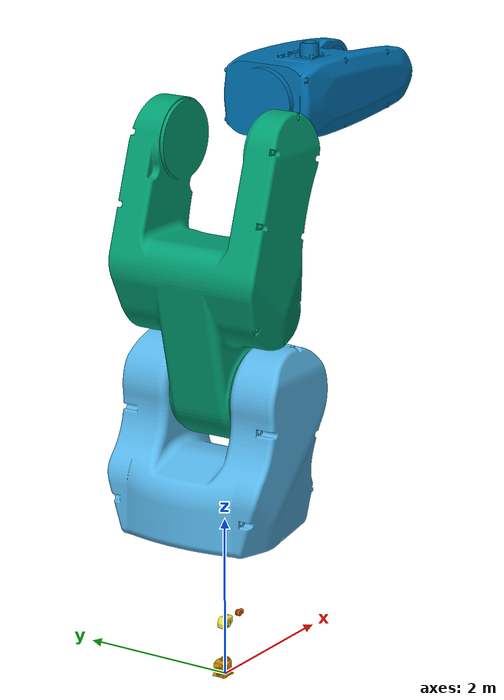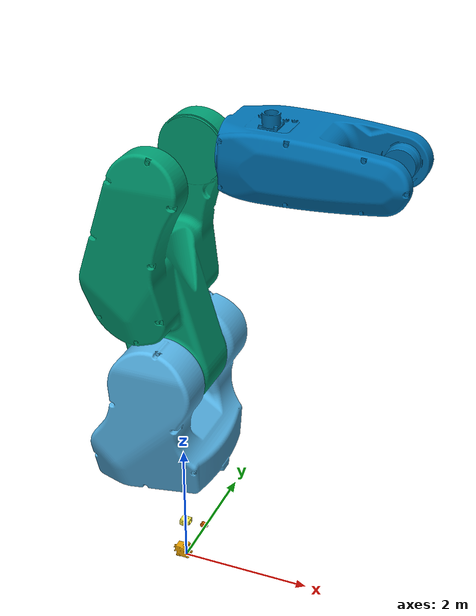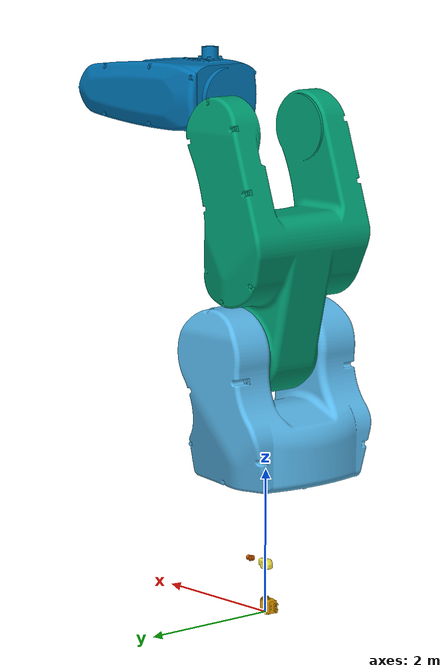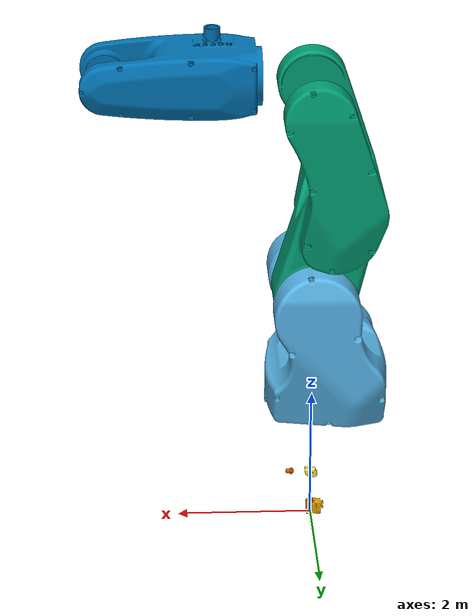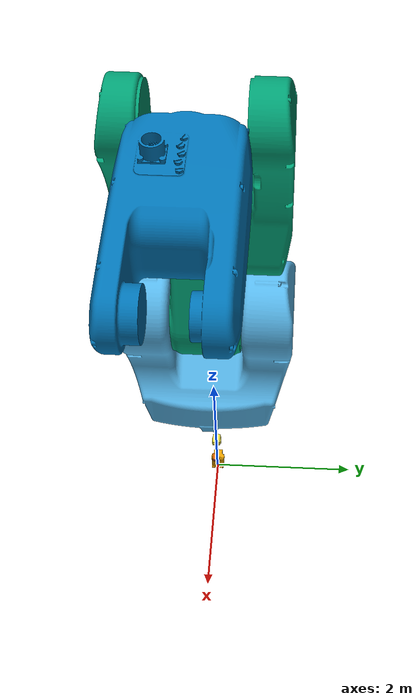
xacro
<?xml version="1.0" ?>
<robot name="er3600" xmlns:xacro="http://www.ros.org/wiki/xacro">
<link name="er3600_base_link">
  <inertial>
    <origin xyz="-0.04588103472079715 -0.00096093718071204 0.09732935529090858" rpy="0 0 0"/>
    <mass value="49.168703789271"/>
    <inertia ixx="0.249181" iyy="0.31934" izz="0.276201" ixy="-0.002035" iyz="1.4e-05" ixz="-0.01146"/>
  </inertial>
  <visual>
    <origin xyz="0 0 0" rpy="0 0 0"/>
    <geometry>
      <mesh filename="file://$(find er3600_description)/meshes/obj/base_link.obj" scale="0.01 0.01 0.01"/>
    </geometry>
  </visual>
  <collision>
    <origin xyz="0 0 0" rpy="0 0 0"/>
    <geometry>
      <mesh filename="file://$(find er3600_description)/meshes/stl/base_link.stl" scale="0.001 0.001 0.001"/>
    </geometry>
  </collision>
</link>

<link name="link1_1">
  <inertial>
    <origin xyz="-0.013928781393613353 -0.00035077205737144284 0.09857927042496772" rpy="0 0 0"/>
    <mass value="19.336200620341412"/>
    <inertia ixx="0.210765" iyy="0.127049" izz="0.154202" ixy="-0.000308" iyz="-3.8e-05" ixz="-0.010369"/>
  </inertial>
  <visual>
    <origin xyz="0.00074 0.000669 -0.195218" rpy="0 0 0"/>
    <geometry>
      <mesh filename="file://$(find er3600_description)/meshes/obj/link1_1.obj" scale="0.01 0.01 0.01"/>
    </geometry>
  </visual>
  <collision>
    <origin xyz="0.00074 0.000669 -0.195218" rpy="0 0 0"/>
    <geometry>
      <mesh filename="file://$(find er3600_description)/meshes/stl/link1_1.stl" scale="0.001 0.001 0.001"/>
    </geometry>
  </collision>
</link>

<link name="link2_1">
  <inertial>
    <origin xyz="-0.021883207590868526 0.04822388948781154 0.13410308670762766" rpy="0 0 0"/>
    <mass value="39.61118840801178"/>
    <inertia ixx="0.507653" iyy="0.417458" izz="0.182812" ixy="-0.000233" iyz="-0.000114" ixz="0.010791"/>
  </inertial>
  <visual>
    <origin xyz="0.00074 0.048669 -0.368218" rpy="0 0 0"/>
    <geometry>
      <mesh filename="file://$(find er3600_description)/meshes/obj/link2_1.obj" scale="0.01 0.01 0.01"/>
    </geometry>
  </visual>
  <collision>
    <origin xyz="0.00074 0.048669 -0.368218" rpy="0 0 0"/>
    <geometry>
      <mesh filename="file://$(find er3600_description)/meshes/stl/link2_1.stl" scale="0.001 0.001 0.001"/>
    </geometry>
  </collision>
</link>

<link name="link3_1">
  <inertial>
    <origin xyz="-0.013523278276526702 0.05775044302012478 0.014436901942284752" rpy="0 0 0"/>
    <mass value="16.622402242515548"/>
    <inertia ixx="0.039851" iyy="0.051163" izz="0.04812" ixy="-0.000364" iyz="0.00028" ixz="-0.004005"/>
  </inertial>
  <visual>
    <origin xyz="0.00074 0.056669 -0.663218" rpy="0 0 0"/>
    <geometry>
      <mesh filename="file://$(find er3600_description)/meshes/obj/link3_1.obj" scale="0.01 0.01 0.01"/>
    </geometry>
  </visual>
  <collision>
    <origin xyz="0.00074 0.056669 -0.663218" rpy="0 0 0"/>
    <geometry>
      <mesh filename="file://$(find er3600_description)/meshes/stl/link3_1.stl" scale="0.001 0.001 0.001"/>
    </geometry>
  </collision>
</link>

<link name="link4_1">
  <inertial>
    <origin xyz="0.11578239396708156 -0.0018433641701102498 0.0009432162781688458" rpy="0 0 0"/>
    <mass value="7.832926502664415"/>
    <inertia ixx="0.020785" iyy="0.047804" izz="0.058016" ixy="-0.00107" iyz="9.3e-05" ixz="0.000345"/>
  </inertial>
  <visual>
    <origin xyz="-0.07626 0.000169 -0.700218" rpy="0 0 0"/>
    <geometry>
      <mesh filename="file://$(find er3600_description)/meshes/obj/link4_1.obj" scale="0.01 0.01 0.01"/>
    </geometry>
  </visual>
  <collision>
    <origin xyz="-0.07626 0.000169 -0.700218" rpy="0 0 0"/>
    <geometry>
      <mesh filename="file://$(find er3600_description)/meshes/stl/link4_1.stl" scale="0.001 0.001 0.001"/>
    </geometry>
  </collision>
</link>

<link name="link5_1">
  <inertial>
    <origin xyz="0.023055761757816262 -0.02354084651228332 -5.31846369621336e-05" rpy="0 0 0"/>
    <mass value="2.864964360899122"/>
    <inertia ixx="0.001836" iyy="0.003374" izz="0.003172" ixy="-0.000197" iyz="0.0" ixz="2e-06"/>
  </inertial>
  <visual>
    <origin xyz="-0.29476 -0.020831 -0.700218" rpy="0 0 0"/>
    <geometry>
      <mesh filename="file://$(find er3600_description)/meshes/obj/link5_1.obj" scale="0.01 0.01 0.01"/>
    </geometry>
  </visual>
  <collision>
    <origin xyz="-0.29476 -0.020831 -0.700218" rpy="0 0 0"/>
    <geometry>
      <mesh filename="file://$(find er3600_description)/meshes/stl/link5_1.stl" scale="0.001 0.001 0.001"/>
    </geometry>
  </collision>
</link>

<link name="link6_1">
  <inertial>
    <origin xyz="0.0022497869689456773 2.328065368062751e-07 -0.0003565192338087497" rpy="0 0 0"/>
    <mass value="0.030641793338357776"/>
    <inertia ixx="8e-06" iyy="4e-06" izz="4e-06" ixy="0.0" iyz="-0.0" ixz="-0.0"/>
  </inertial>
  <visual>
    <origin xyz="-0.36876 0.000169 -0.700218" rpy="0 0 0"/>
    <geometry>
      <mesh filename="file://$(find er3600_description)/meshes/obj/link6_1.obj" scale="0.01 0.01 0.01"/>
    </geometry>
  </visual>
  <collision>
    <origin xyz="-0.36876 0.000169 -0.700218" rpy="0 0 0"/>
    <geometry>
      <mesh filename="file://$(find er3600_description)/meshes/stl/link6_1.stl" scale="0.001 0.001 0.001"/>
    </geometry>
  </collision>
</link>

<joint name="joint1" type="revolute">
  <origin xyz="-0.00074 -0.000669 0.195218" rpy="0 0 0"/>
  <parent link="er3600_base_link"/>
  <child link="link1_1"/>
  <axis xyz="-0.0 -0.0 1.0"/>
  <limit upper="6.283185307179586" lower="-6.283185307179586" effort="100" velocity="100"/>
</joint>

<joint name="joint2" type="revolute">
  <origin xyz="0.0 -0.048 0.173" rpy="0 0 0"/>
  <parent link="link1_1"/>
  <child link="link2_1"/>
  <axis xyz="0.0 -1.0 -0.0"/>
  <limit upper="6.283185307179586" lower="-6.283185307179586" effort="100" velocity="100"/>
</joint>

<joint name="joint3" type="revolute">
  <origin xyz="0.0 -0.008 0.295" rpy="0 0 0"/>
  <parent link="link2_1"/>
  <child link="link3_1"/>
  <axis xyz="0.0 -1.0 -0.0"/>
  <limit upper="6.283185307179586" lower="-6.283185307179586" effort="100" velocity="100"/>
</joint>

<joint name="joint4" type="revolute">
  <origin xyz="0.077 0.0565 0.037" rpy="0 0 0"/>
  <parent link="link3_1"/>
  <child link="link4_1"/>
  <axis xyz="1.0 -0.0 -0.0"/>
  <limit upper="6.283185307179586" lower="-6.283185307179586" effort="100" velocity="100"/>
</joint>

<joint name="joint5" type="revolute">
  <origin xyz="0.2185 0.021 0.0" rpy="0 0 0"/>
  <parent link="link4_1"/>
  <child link="link5_1"/>
  <axis xyz="0.0 -1.0 -0.0"/>
  <limit upper="6.283185307179586" lower="-6.283185307179586" effort="100" velocity="100"/>
</joint>

<joint name="joint6" type="revolute">
  <origin xyz="0.074 -0.021 0.0" rpy="0 0 0"/>
  <parent link="link5_1"/>
  <child link="link6_1"/>
  <axis xyz="1.0 -0.0 -0.0"/>
  <limit upper="6.283185307179586" lower="-6.283185307179586" effort="100" velocity="100"/>
</joint>

<link name="kaigos_tcp">
</link>

<joint name="kaigos_tcp_joint" type="fixed">
  <origin xyz="0.0045 0.0 0.0" rpy="0.0 1.5707963267948966 0.0"/>
  <parent link="link6_1"/>
  <child link="kaigos_tcp"/>
</joint>

</robot>
